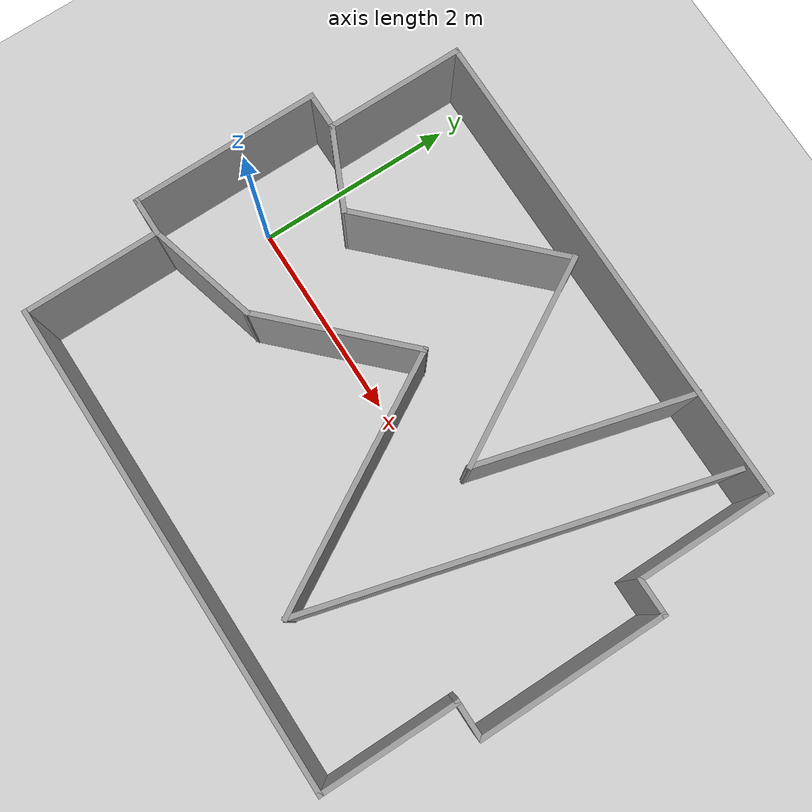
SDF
<sdf version="1.6">
 <world name="default">
  <light name="sun" type="directional">
   <pose>0 0 10 0 -0 0</pose>
   <diffuse>0.8 0.8 0.8 1</diffuse>
   <specular>0.2 0.2 0.2 1</specular>
   <attenuation>
    <range>1000</range>
    <constant>0.9</constant>
    <linear>0.01</linear>
    <quadratic>0.001</quadratic>
   </attenuation>
   <direction>-0.5 0.1 -0.9</direction>
  </light>
  <model name="ground_plane">
   <static>1</static>
   <link name="link">
    <collision name="collision">
     <geometry><plane><normal>0 0 1</normal><size>100 100</size></plane></geometry>
     <surface><friction><ode><mu>100</mu><mu2>50</mu2></ode></friction></surface>
    </collision>
    <visual name="visual">
     <cast_shadows>0</cast_shadows>
     <geometry><plane><normal>0 0 1</normal><size>100 100</size></plane></geometry>
     <material>
      <script><uri>file://media/materials/scripts/gazebo.material</uri><name>Gazebo/Grey</name></script>
     </material>
    </visual>
   </link>
  </model>
  <gravity>0 0 -9.8</gravity>
  <magnetic_field>6e-06 2.3e-05 -4.2e-05</magnetic_field>
  <atmosphere type="adiabatic"/>
  <physics name="default_physics" default="0" type="ode">
   <max_step_size>0.001</max_step_size>
   <real_time_factor>1</real_time_factor>
   <real_time_update_rate>1000</real_time_update_rate>
  </physics>
  <scene><ambient>0.4 0.4 0.4 1</ambient><background>0.7 0.7 0.7 1</background><shadows>1</shadows></scene>
  <spherical_coordinates>
   <surface_model>EARTH_WGS84</surface_model>
   <latitude_deg>0</latitude_deg>
   <longitude_deg>0</longitude_deg>
   <elevation>0</elevation>
   <heading_deg>0</heading_deg>
  </spherical_coordinates>
  <model name="rgarena2-1">
   <pose>2.18 0.03 0 0 0 -1.56942</pose>
   <link name="Wall_0">
    <collision name="Wall_0_Collision">
     <geometry><box><size>4.9 0.05 1</size></box></geometry>
     <pose>0 0 0.5 0 -0 0</pose>
    </collision>
    <visual name="Wall_0_Visual">
     <pose>0 0 0.5 0 -0 0</pose>
     <geometry><box><size>4.9 0.05 1</size></box></geometry>
     <material>
      <script><uri>file://media/materials/scripts/gazebo.material</uri><name>Gazebo/Grey</name></script>
      <ambient>1 1 1 1</ambient>
     </material>
     <meta><layer>0</layer></meta>
    </visual>
    <pose>-2.27061 -0 0 0 -0 -1.5708</pose>
   </link>
   <link name="Wall_1">
    <collision name="Wall_1_Collision">
     <geometry><box><size>1.4 0.05 1</size></box></geometry>
     <pose>0 0 0.5 0 -0 0</pose>
    </collision>
    <visual name="Wall_1_Visual">
     <pose>0 0 0.5 0 -0 0</pose>
     <geometry><box><size>1.4 0.05 1</size></box></geometry>
     <material>
      <script><uri>file://media/materials/scripts/gazebo.material</uri><name>Gazebo/Grey</name></script>
      <ambient>1 1 1 1</ambient>
     </material>
     <meta><layer>0</layer></meta>
    </visual>
    <pose>-1.59561 -2.425 0 0 -0 0</pose>
   </link>
   <link name="Wall_13">
    <collision name="Wall_13_Collision">
     <geometry><box><size>1.9 0.05 1</size></box></geometry>
     <pose>0 0 0.5 0 -0 0</pose>
    </collision>
    <visual name="Wall_13_Visual">
     <pose>0 0 0.5 0 -0 0</pose>
     <geometry><box><size>1.9 0.05 1</size></box></geometry>
     <material>
      <script><uri>file://media/materials/scripts/gazebo.material</uri><name>Gazebo/Grey</name></script>
      <ambient>1 1 1 1</ambient>
     </material>
     <meta><layer>0</layer></meta>
    </visual>
    <pose>0.004394 2.775 0 0 -0 3.14159</pose>
   </link>
   <link name="Wall_14">
    <collision name="Wall_14_Collision">
     <geometry><box><size>0.4 0.05 1</size></box></geometry>
     <pose>0 0 0.5 0 -0 0</pose>
    </collision>
    <visual name="Wall_14_Visual">
     <pose>0 0 0.5 0 -0 0</pose>
     <geometry><box><size>0.4 0.05 1</size></box></geometry>
     <material>
      <script><uri>file://media/materials/scripts/gazebo.material</uri><name>Gazebo/Grey</name></script>
      <ambient>1 1 1 1</ambient>
     </material>
     <meta><layer>0</layer></meta>
    </visual>
    <pose>-0.920606 2.6 0 0 -0 -1.5708</pose>
   </link>
   <link name="Wall_15">
    <collision name="Wall_15_Collision">
     <geometry><box><size>1.4 0.05 1</size></box></geometry>
     <pose>0 0 0.5 0 -0 0</pose>
    </collision>
    <visual name="Wall_15_Visual">
     <pose>0 0 0.5 0 -0 0</pose>
     <geometry><box><size>1.4 0.05 1</size></box></geometry>
     <material>
      <script><uri>file://media/materials/scripts/gazebo.material</uri><name>Gazebo/Grey</name></script>
      <ambient>1 1 1 1</ambient>
     </material>
     <meta><layer>0</layer></meta>
    </visual>
    <pose>-1.59561 2.425 0 0 -0 3.14159</pose>
   </link>
   <link name="Wall_2">
    <collision name="Wall_2_Collision">
     <geometry><box><size>0.4 0.05 1</size></box></geometry>
     <pose>0 0 0.5 0 -0 0</pose>
    </collision>
    <visual name="Wall_2_Visual">
     <pose>0 0 0.5 0 -0 0</pose>
     <geometry><box><size>0.4 0.05 1</size></box></geometry>
     <material>
      <script><uri>file://media/materials/scripts/gazebo.material</uri><name>Gazebo/Grey</name></script>
      <ambient>1 1 1 1</ambient>
     </material>
     <meta><layer>0</layer></meta>
    </visual>
    <pose>-0.920606 -2.6 0 0 -0 -1.5708</pose>
   </link>
   <link name="Wall_22">
    <collision name="Wall_22_Collision">
     <geometry><box><size>0.859648 0.05 1</size></box></geometry>
     <pose>0 0 0.5 0 -0 0</pose>
    </collision>
    <visual name="Wall_22_Visual">
     <pose>0 0 0.5 0 -0 0</pose>
     <geometry><box><size>0.859648 0.05 1</size></box></geometry>
     <material>
      <script><uri>file://media/materials/scripts/gazebo.material</uri><name>Gazebo/Grey</name></script>
      <ambient>1 1 1 1</ambient>
     </material>
     <meta><layer>0</layer></meta>
    </visual>
    <pose>-0.750106 -2.058 0 0 -0 1.13589</pose>
   </link>
   <link name="Wall_23">
    <collision name="Wall_23_Collision">
     <geometry><box><size>2.14996 0.05 1</size></box></geometry>
     <pose>0 0 0.5 0 -0 0</pose>
    </collision>
    <visual name="Wall_23_Visual">
     <pose>0 0 0.5 0 -0 0</pose>
     <geometry><box><size>2.14996 0.05 1</size></box></geometry>
     <material>
      <script><uri>file://media/materials/scripts/gazebo.material</uri><name>Gazebo/Grey</name></script>
      <ambient>1 1 1 1</ambient>
     </material>
     <meta><layer>0</layer></meta>
    </visual>
    <pose>-1.32211 -0.9485 0 0 -0 2.35619</pose>
   </link>
   <link name="Wall_24">
    <collision name="Wall_24_Collision">
     <geometry><box><size>2.15037 0.05 1</size></box></geometry>
     <pose>0 0 0.5 0 -0 0</pose>
    </collision>
    <visual name="Wall_24_Visual">
     <pose>0 0 0.5 0 -0 0</pose>
     <geometry><box><size>2.15037 0.05 1</size></box></geometry>
     <material>
      <script><uri>file://media/materials/scripts/gazebo.material</uri><name>Gazebo/Grey</name></script>
      <ambient>1 1 1 1</ambient>
     </material>
     <meta><layer>0</layer></meta>
    </visual>
    <pose>-1.15511 0.319 0 0 -0 0.523516</pose>
   </link>
   <link name="Wall_25">
    <collision name="Wall_25_Collision">
     <geometry><box><size>2.15003 0.05 1</size></box></geometry>
     <pose>0 0 0.5 0 -0 0</pose>
    </collision>
    <visual name="Wall_25_Visual">
     <pose>0 0 0.5 0 -0 0</pose>
     <geometry><box><size>2.15003 0.05 1</size></box></geometry>
     <material>
      <script><uri>file://media/materials/scripts/gazebo.material</uri><name>Gazebo/Grey</name></script>
      <ambient>1 1 1 1</ambient>
     </material>
     <meta><layer>0</layer></meta>
    </visual>
    <pose>-1.25961 1.116 0 0 -0 2.87952</pose>
   </link>
   <link name="Wall_27">
    <collision name="Wall_27_Collision">
     <geometry><box><size>1.15054 0.05 1</size></box></geometry>
     <pose>0 0 0.5 0 -0 0</pose>
    </collision>
    <visual name="Wall_27_Visual">
     <pose>0 0 0.5 0 -0 0</pose>
     <geometry><box><size>1.15054 0.05 1</size></box></geometry>
     <material>
      <script><uri>file://media/materials/scripts/gazebo.material</uri><name>Gazebo/Grey</name></script>
      <ambient>1 1 1 1</ambient>
     </material>
     <meta><layer>0</layer></meta>
    </visual>
    <pose>0.786894 -1.8935 0 0 -0 1.83275</pose>
   </link>
   <link name="Wall_28">
    <collision name="Wall_28_Collision">
     <geometry><box><size>1.64948 0.05 1</size></box></geometry>
     <pose>0 0 0.5 0 -0 0</pose>
    </collision>
    <visual name="Wall_28_Visual">
     <pose>0 0 0.5 0 -0 0</pose>
     <geometry><box><size>1.64948 0.05 1</size></box></geometry>
     <material>
      <script><uri>file://media/materials/scripts/gazebo.material</uri><name>Gazebo/Grey</name></script>
      <ambient>1 1 1 1</ambient>
     </material>
     <meta><layer>0</layer></meta>
    </visual>
    <pose>0.078894 -0.7965 0 0 -0 2.35619</pose>
   </link>
   <link name="Wall_29">
    <collision name="Wall_29_Collision">
     <geometry><box><size>2.65029 0.05 1</size></box></geometry>
     <pose>0 0 0.5 0 -0 0</pose>
    </collision>
    <visual name="Wall_29_Visual">
     <pose>0 0 0.5 0 -0 0</pose>
     <geometry><box><size>2.65029 0.05 1</size></box></geometry>
     <material>
      <script><uri>file://media/materials/scripts/gazebo.material</uri><name>Gazebo/Grey</name></script>
      <ambient>1 1 1 1</ambient>
     </material>
     <meta><layer>0</layer></meta>
    </visual>
    <pose>0.639394 0.419 0 0 -0 0.523535</pose>
   </link>
   <link name="Wall_3">
    <collision name="Wall_3_Collision">
     <geometry><box><size>1.9 0.05 1</size></box></geometry>
     <pose>0 0 0.5 0 -0 0</pose>
    </collision>
    <visual name="Wall_3_Visual">
     <pose>0 0 0.5 0 -0 0</pose>
     <geometry><box><size>1.9 0.05 1</size></box></geometry>
     <material>
      <script><uri>file://media/materials/scripts/gazebo.material</uri><name>Gazebo/Grey</name></script>
      <ambient>1 1 1 1</ambient>
     </material>
     <meta><layer>0</layer></meta>
    </visual>
    <pose>0.004394 -2.775 0 0 -0 0</pose>
   </link>
   <link name="Wall_30">
    <collision name="Wall_30_Collision">
     <geometry><box><size>4.15036 0.05 1</size></box></geometry>
     <pose>0 0 0.5 0 -0 0</pose>
    </collision>
    <visual name="Wall_30_Visual">
     <pose>0 0 0.5 0 -0 0</pose>
     <geometry><box><size>4.15036 0.05 1</size></box></geometry>
     <material>
      <script><uri>file://media/materials/scripts/gazebo.material</uri><name>Gazebo/Grey</name></script>
      <ambient>1 1 1 1</ambient>
     </material>
     <meta><layer>0</layer></meta>
    </visual>
    <pose>-0.215106 1.5995 0 0 -0 2.87988</pose>
   </link>
   <link name="Wall_4">
    <collision name="Wall_4_Collision">
     <geometry><box><size>0.4 0.05 1</size></box></geometry>
     <pose>0 0 0.5 0 -0 0</pose>
    </collision>
    <visual name="Wall_4_Visual">
     <pose>0 0 0.5 0 -0 0</pose>
     <geometry><box><size>0.4 0.05 1</size></box></geometry>
     <material>
      <script><uri>file://media/materials/scripts/gazebo.material</uri><name>Gazebo/Grey</name></script>
      <ambient>1 1 1 1</ambient>
     </material>
     <meta><layer>0</layer></meta>
    </visual>
    <pose>0.929394 -2.6 0 0 -0 1.5708</pose>
   </link>
   <link name="Wall_5">
    <collision name="Wall_5_Collision">
     <geometry><box><size>1.4 0.05 1</size></box></geometry>
     <pose>0 0 0.5 0 -0 0</pose>
    </collision>
    <visual name="Wall_5_Visual">
     <pose>0 0 0.5 0 -0 0</pose>
     <geometry><box><size>1.4 0.05 1</size></box></geometry>
     <material>
      <script><uri>file://media/materials/scripts/gazebo.material</uri><name>Gazebo/Grey</name></script>
      <ambient>1 1 1 1</ambient>
     </material>
     <meta><layer>0</layer></meta>
    </visual>
    <pose>1.60439 -2.425 0 0 -0 0</pose>
   </link>
   <link name="Wall_6">
    <collision name="Wall_6_Collision">
     <geometry><box><size>4.9 0.05 1</size></box></geometry>
     <pose>0 0 0.5 0 -0 0</pose>
    </collision>
    <visual name="Wall_6_Visual">
     <pose>0 0 0.5 0 -0 0</pose>
     <geometry><box><size>4.9 0.05 1</size></box></geometry>
     <material>
      <script><uri>file://media/materials/scripts/gazebo.material</uri><name>Gazebo/Grey</name></script>
      <ambient>1 1 1 1</ambient>
     </material>
     <meta><layer>0</layer></meta>
    </visual>
    <pose>2.27939 -0 0 0 -0 1.5708</pose>
   </link>
   <link name="Wall_7">
    <collision name="Wall_7_Collision">
     <geometry><box><size>1.4 0.05 1</size></box></geometry>
     <pose>0 0 0.5 0 -0 0</pose>
    </collision>
    <visual name="Wall_7_Visual">
     <pose>0 0 0.5 0 -0 0</pose>
     <geometry><box><size>1.4 0.05 1</size></box></geometry>
     <material>
      <script><uri>file://media/materials/scripts/gazebo.material</uri><name>Gazebo/Grey</name></script>
      <ambient>1 1 1 1</ambient>
     </material>
     <meta><layer>0</layer></meta>
    </visual>
    <pose>1.60439 2.425 0 0 -0 3.14159</pose>
   </link>
   <link name="Wall_9">
    <collision name="Wall_9_Collision">
     <geometry><box><size>0.4 0.05 1</size></box></geometry>
     <pose>0 0 0.5 0 -0 0</pose>
    </collision>
    <visual name="Wall_9_Visual">
     <pose>0 0 0.5 0 -0 0</pose>
     <geometry><box><size>0.4 0.05 1</size></box></geometry>
     <material>
      <script><uri>file://media/materials/scripts/gazebo.material</uri><name>Gazebo/Grey</name></script>
      <ambient>1 1 1 1</ambient>
     </material>
     <meta><layer>0</layer></meta>
    </visual>
    <pose>0.929394 2.6 0 0 -0 1.5708</pose>
   </link>
   <static>1</static>
  </model>
 </world>
</sdf>
